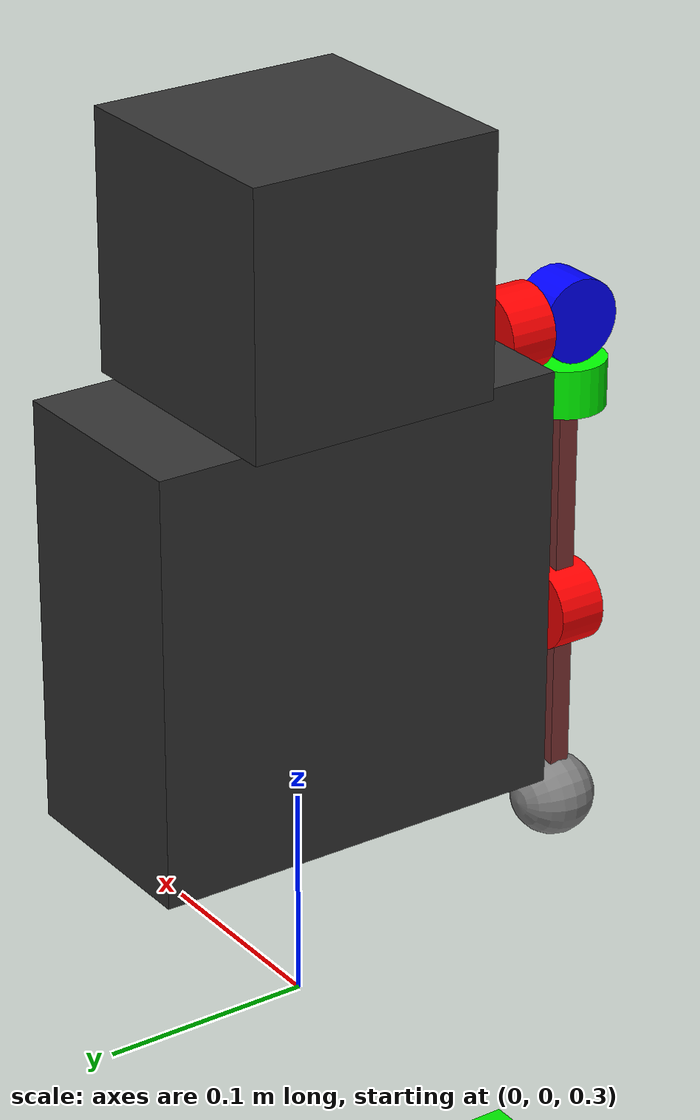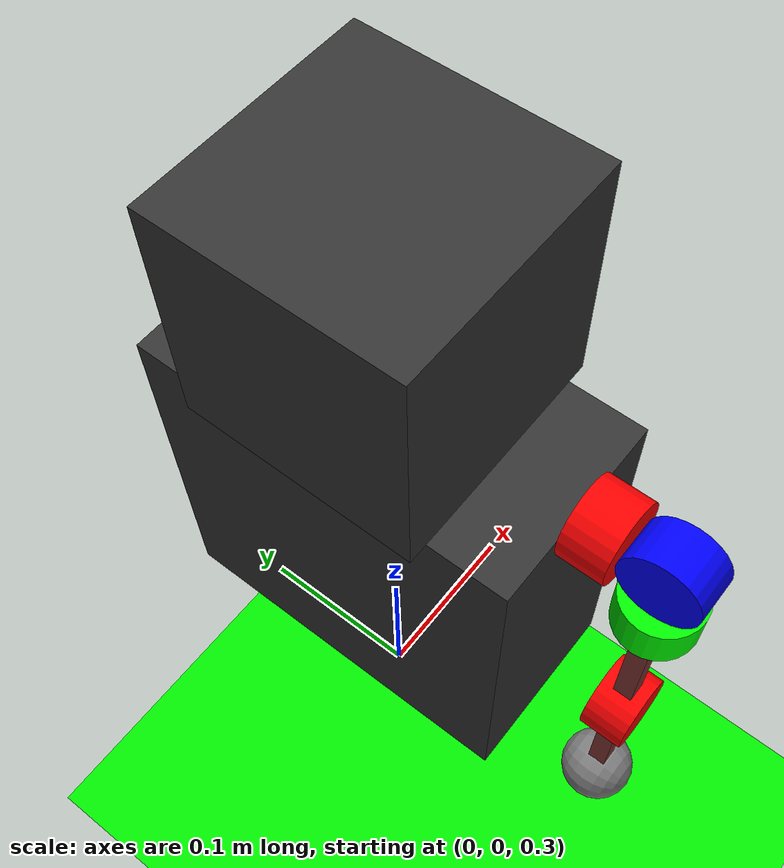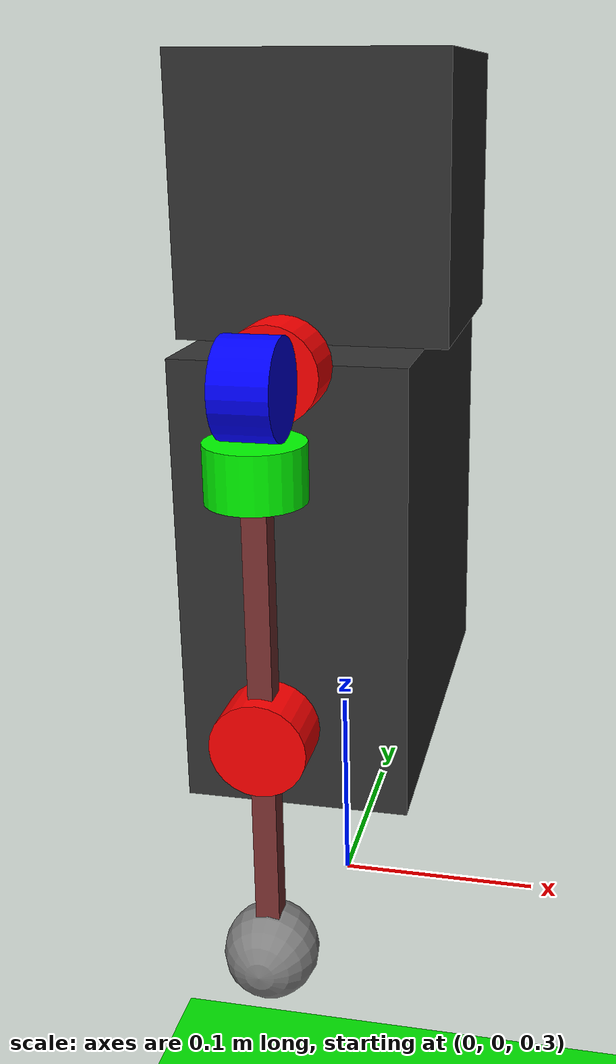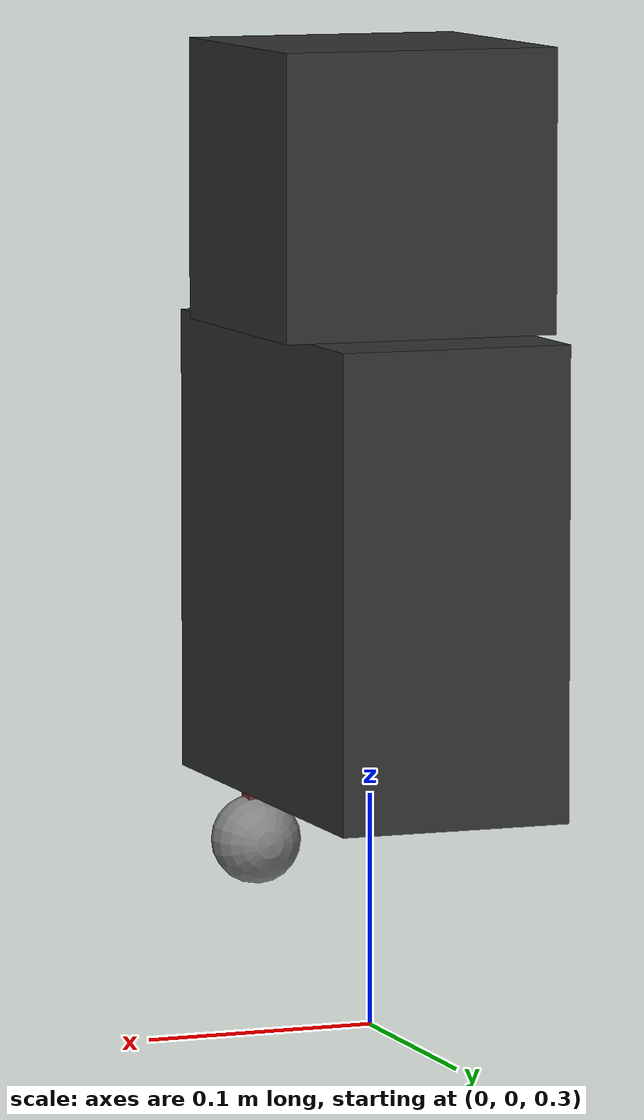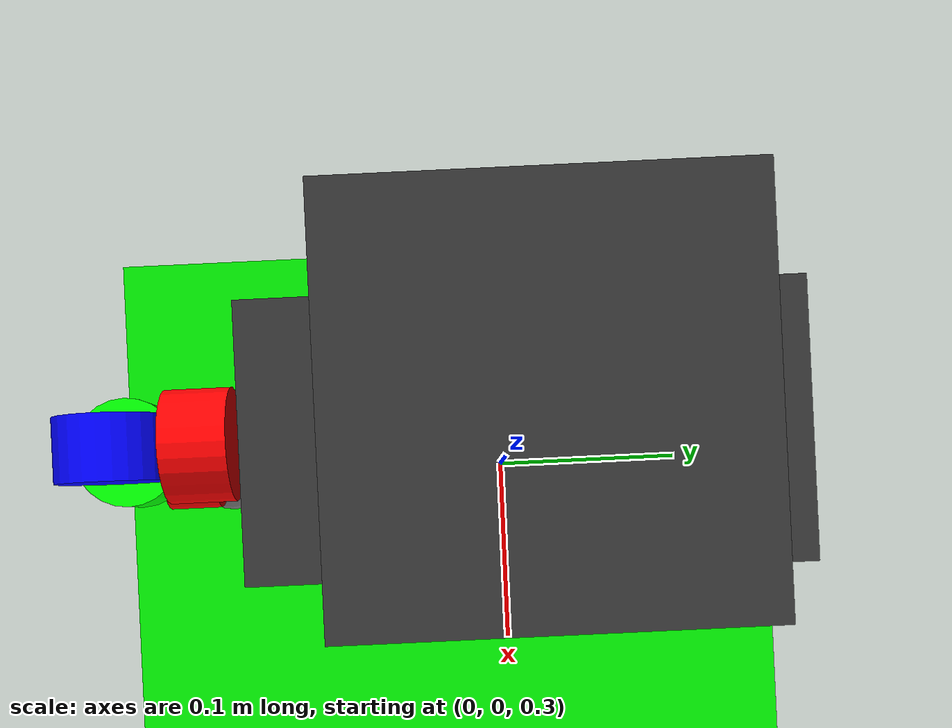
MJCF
<mujoco model="arm_task">

    <option timestep="0.0002" />
    <actuator>
        <motor gear="0.01" joint="hinge_1" name="actuator_motor1" ctrlrange="-100 100" ctrllimited="true"/>
        <motor gear="0.05" joint="hinge_2" name="actuator_motor2" ctrlrange="-100 100" ctrllimited="true"/>
        <motor gear="0.0005" joint="hinge_3" name="actuator_motor3" ctrlrange="-100 100" ctrllimited="true"/>
        <motor gear="0.005" joint="hinge_5" name="actuator_motor5" ctrlrange="-100 100" ctrllimited="true"/>
    </actuator>

    <visual>
        <headlight ambient="0.5 0.5 0.5" />
    </visual>

    <asset>
        <material name="white" rgba="1 1 1 1" />
        <material name="blue" rgba="0 0 1 1" />
        <material name="green" rgba="0 1 0 1" />
        <material name="red" rgba="1 0 0 1" />
    </asset>

    <option gravity="0 0 -9.81" />

    <worldbody>
    <light diffuse=".5 .5 .5" pos="0 0 3" dir="0 0 -1"/>
        <geom type="plane" size="1 1 0.1" rgba="0 .9 0 1"/>

        <body pos="0 0 0.5" euler="0 0 0" name="body">
            <inertial pos="0 0 0" mass="10" diaginertia="0.01 0.01 0.01"/>
            <geom type="box" size=".05 .1 .1" rgba="0.2 0.2 0.2 1"/>

            <body pos="0 0 0.16" euler="0 0 0" name="head">
                <inertial pos="0 0 0" mass="1" diaginertia="0.01 0.01 0.01"/>
                <geom type="box" size=".06 .06 .06" rgba="0.2 0.2 0.2 1"/>
            </body>

            <body name="link_1" pos="0 -0.1125 0.1">
                <joint name="hinge_1" pos="0 0 0" axis="0 1 0" />
                <geom type="cylinder" size=".0198 .0115" pos="0 0 0" euler="90 0 0" material="red" mass="0.065"/>
                <body name="link_2" pos="0 -0.0315 0" euler="0 90 90">
                    <joint name="hinge_2" pos="0 0 0" axis="0 0 1" />
                    <geom type="cylinder" size=".0198 .0115" pos="0 0 0" euler="0 0 0" material="blue" mass="0.065"/>
                    <body name="link_3" pos="0 -0.0315 0" euler="90 0 0">
                        <joint name="hinge_3" pos="0 0 0" axis="0 0 1" />
                        <geom type="cylinder" size=".0198 .0115" pos="0 0 0" euler="0 0 0" material="green" mass="0.065"/>
                        <body name="link_4" pos="0 0 0.0615" euler="0 0 0">
                            <geom type="box" size="0.005 0.005 0.05" rgba="0.5 0.2 0.2 1" mass="0.02"/>
                            <body name="link_5" pos="0 0 0.05" euler="0 90 90">
                                <joint name="hinge_5" pos="0 0 0" axis="0 0 1" />
                                <geom type="cylinder" size=".0198 .0115" pos="0 0 0" euler="0 0 0" material="red" mass="0.065"/>
                                <body name="link_6" pos="0 0.05 0" euler="0 0 0">
                                    <geom type="box" size="0.005 0.05 0.005" rgba="0.5 0.2 0.2 1" mass="0.02"/>
                                    <body name="ball" pos="0 0.05 0" euler="0 0 0">
                                        <inertial pos="0 0 0" mass="0.5" diaginertia="0.01 0.01 0.01"/>
                                        <geom type="sphere" size=".02" rgba=".5 .5 .5 1"/>
                                    </body>
                                </body>
                            </body>
                        </body>
                    </body>
                </body>
            </body>

        </body>

    </worldbody>

</mujoco>
